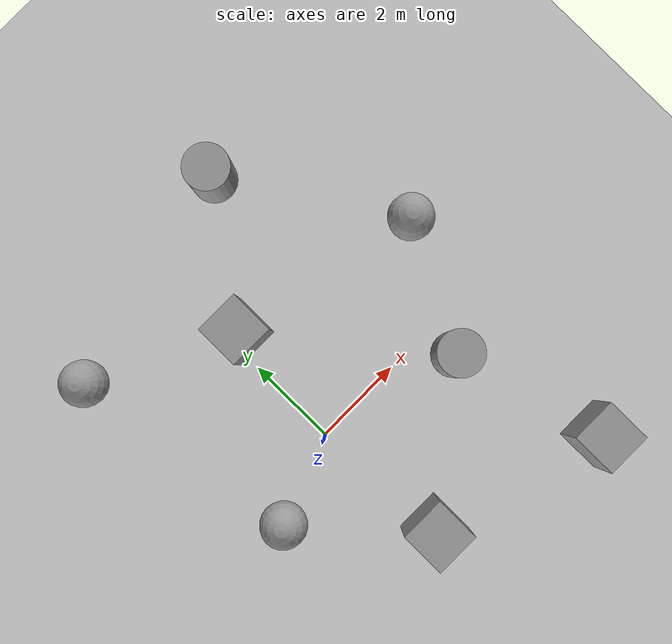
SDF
<sdf version="1.7">
 <world name="default">
  <light name="sun" type="directional">
   <pose>0 0 10 0 -0 0</pose>
   <diffuse>0.8 0.8 0.8 1</diffuse>
   <specular>0.2 0.2 0.2 1</specular>
   <attenuation>
    <range>1000</range>
    <constant>0.9</constant>
    <linear>0.01</linear>
    <quadratic>0.001</quadratic>
   </attenuation>
   <direction>-0.5 0.1 -0.9</direction>
   <spot><inner_angle>0</inner_angle><outer_angle>0</outer_angle><falloff>0</falloff></spot>
  </light>
  <model name="ground_plane">
   <static>1</static>
   <link name="link">
    <collision name="collision">
     <geometry><plane><normal>0 0 1</normal><size>100 100</size></plane></geometry>
     <surface><friction><ode><mu>100</mu><mu2>50</mu2></ode></friction></surface>
    </collision>
    <visual name="visual">
     <cast_shadows>0</cast_shadows>
     <geometry><plane><normal>0 0 1</normal><size>100 100</size></plane></geometry>
     <material>
      <script><uri>file://media/materials/scripts/gazebo.material</uri><name>Gazebo/Grey</name></script>
     </material>
    </visual>
   </link>
  </model>
  <gravity>0 0 -9.8</gravity>
  <magnetic_field>6e-06 2.3e-05 -4.2e-05</magnetic_field>
  <atmosphere type="adiabatic"/>
  <physics type="ode">
   <max_step_size>0.001</max_step_size>
   <real_time_factor>1</real_time_factor>
   <real_time_update_rate>1000</real_time_update_rate>
  </physics>
  <scene><ambient>0.4 0.4 0.4 1</ambient><background>0.7 0.7 0.7 1</background><shadows>1</shadows></scene>
  <audio><device>default</device></audio>
  <spherical_coordinates>
   <surface_model>EARTH_WGS84</surface_model>
   <latitude_deg>0</latitude_deg>
   <longitude_deg>0</longitude_deg>
   <elevation>0</elevation>
   <heading_deg>0</heading_deg>
  </spherical_coordinates>
  <model name="unit_box">
   <pose>0.28411 2.8026 0.499995 -1e-05 -0 -0</pose>
   <link name="link">
    <inertial>
     <mass>1</mass>
     <inertia>
      <ixx>0.166667</ixx>
      <ixy>0</ixy>
      <ixz>0</ixz>
      <iyy>0.166667</iyy>
      <iyz>0</iyz>
      <izz>0.166667</izz>
     </inertia>
    </inertial>
    <collision name="collision"><geometry><box><size>1 1 1</size></box></geometry></collision>
    <visual name="visual">
     <geometry><box><size>1 1 1</size></box></geometry>
     <material>
      <script><name>Gazebo/Grey</name><uri>file://media/materials/scripts/gazebo.material</uri></script>
     </material>
    </visual>
   </link>
  </model>
  <model name="unit_sphere">
   <pose>-1.86751 -0.681635 0.5 0 -0 0</pose>
   <link name="link">
    <inertial>
     <mass>1</mass>
     <inertia><ixx>0.1</ixx><ixy>0</ixy><ixz>0</ixz><iyy>0.1</iyy><iyz>0</iyz><izz>0.1</izz></inertia>
    </inertial>
    <collision name="collision"><geometry><sphere><radius>0.5</radius></sphere></geometry></collision>
    <visual name="visual">
     <geometry><sphere><radius>0.5</radius></sphere></geometry>
     <material>
      <script><name>Gazebo/Grey</name><uri>file://media/materials/scripts/gazebo.material</uri></script>
     </material>
    </visual>
   </link>
  </model>
  <model name="unit_cylinder">
   <pose>3.13512 -0.751471 0.499998 3e-06 -4e-06 0</pose>
   <link name="link">
    <inertial>
     <mass>1</mass>
     <inertia><ixx>0.145833</ixx><ixy>0</ixy><ixz>0</ixz><iyy>0.145833</iyy><iyz>0</iyz><izz>0.125</izz></inertia>
    </inertial>
    <collision name="collision">
     <geometry><cylinder><radius>0.5</radius><length>1</length></cylinder></geometry>
    </collision>
    <visual name="visual">
     <geometry><cylinder><radius>0.5</radius><length>1</length></cylinder></geometry>
     <material>
      <script><name>Gazebo/Grey</name><uri>file://media/materials/scripts/gazebo.material</uri></script>
     </material>
    </visual>
   </link>
  </model>
  <model name="unit_cylinder_0">
   <pose>2.19741 5.50509 0.499992 -3e-06 -4e-06 -0</pose>
   <link name="link">
    <inertial>
     <mass>1</mass>
     <inertia><ixx>0.145833</ixx><ixy>0</ixy><ixz>0</ixz><iyy>0.145833</iyy><iyz>0</iyz><izz>0.125</izz></inertia>
    </inertial>
    <collision name="collision">
     <geometry><cylinder><radius>0.5</radius><length>1</length></cylinder></geometry>
    </collision>
    <visual name="visual">
     <geometry><cylinder><radius>0.5</radius><length>1</length></cylinder></geometry>
     <material>
      <script><name>Gazebo/Grey</name><uri>file://media/materials/scripts/gazebo.material</uri></script>
     </material>
    </visual>
   </link>
  </model>
  <model name="unit_box_0">
   <pose>0.245102 -2.99584 0.499995 -1e-05 -0 -0</pose>
   <link name="link">
    <inertial>
     <mass>1</mass>
     <inertia>
      <ixx>0.166667</ixx>
      <ixy>0</ixy>
      <ixz>0</ixz>
      <iyy>0.166667</iyy>
      <iyz>0</iyz>
      <izz>0.166667</izz>
     </inertia>
    </inertial>
    <collision name="collision"><geometry><box><size>1 1 1</size></box></geometry></collision>
    <visual name="visual">
     <geometry><box><size>1 1 1</size></box></geometry>
     <material>
      <script><name>Gazebo/Grey</name><uri>file://media/materials/scripts/gazebo.material</uri></script>
     </material>
    </visual>
   </link>
  </model>
  <model name="unit_sphere_0">
   <pose>-2.70638 4.27531 0.5 0 -0 0</pose>
   <link name="link">
    <inertial>
     <mass>1</mass>
     <inertia><ixx>0.1</ixx><ixy>0</ixy><ixz>0</ixz><iyy>0.1</iyy><iyz>0</iyz><izz>0.1</izz></inertia>
    </inertial>
    <collision name="collision"><geometry><sphere><radius>0.5</radius></sphere></geometry></collision>
    <visual name="visual">
     <geometry><sphere><radius>0.5</radius></sphere></geometry>
     <material>
      <script><name>Gazebo/Grey</name><uri>file://media/materials/scripts/gazebo.material</uri></script>
     </material>
    </visual>
   </link>
  </model>
  <model name="unit_box_1">
   <pose>4.02422 -4.03383 0.499995 -1e-05 -0 0</pose>
   <link name="link">
    <inertial>
     <mass>1</mass>
     <inertia>
      <ixx>0.166667</ixx>
      <ixy>0</ixy>
      <ixz>0</ixz>
      <iyy>0.166667</iyy>
      <iyz>0</iyz>
      <izz>0.166667</izz>
     </inertia>
    </inertial>
    <collision name="collision"><geometry><box><size>1 1 1</size></box></geometry></collision>
    <visual name="visual">
     <geometry><box><size>1 1 1</size></box></geometry>
     <material>
      <script><name>Gazebo/Grey</name><uri>file://media/materials/scripts/gazebo.material</uri></script>
     </material>
    </visual>
   </link>
  </model>
  <model name="unit_sphere_1">
   <pose>4.48203 1.91688 0.5 0 -0 0</pose>
   <link name="link">
    <inertial>
     <mass>1</mass>
     <inertia><ixx>0.1</ixx><ixy>0</ixy><ixz>0</ixz><iyy>0.1</iyy><iyz>0</iyz><izz>0.1</izz></inertia>
    </inertial>
    <collision name="collision"><geometry><sphere><radius>0.5</radius></sphere></geometry></collision>
    <visual name="visual">
     <geometry><sphere><radius>0.5</radius></sphere></geometry>
     <material>
      <script><name>Gazebo/Grey</name><uri>file://media/materials/scripts/gazebo.material</uri></script>
     </material>
    </visual>
   </link>
  </model>
 </world>
</sdf>
